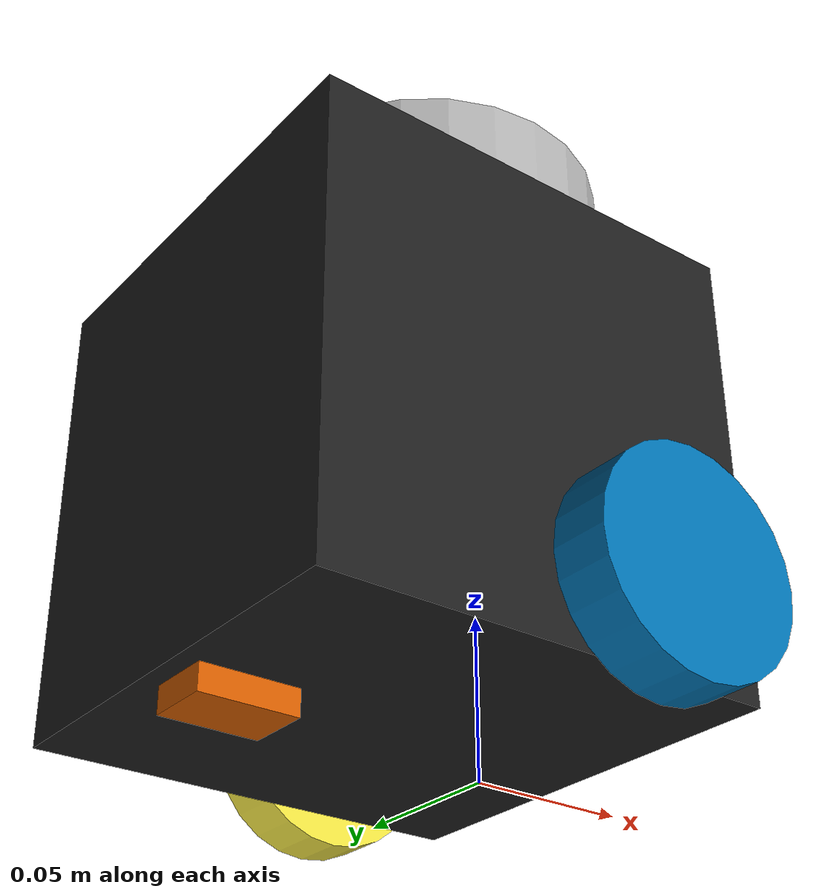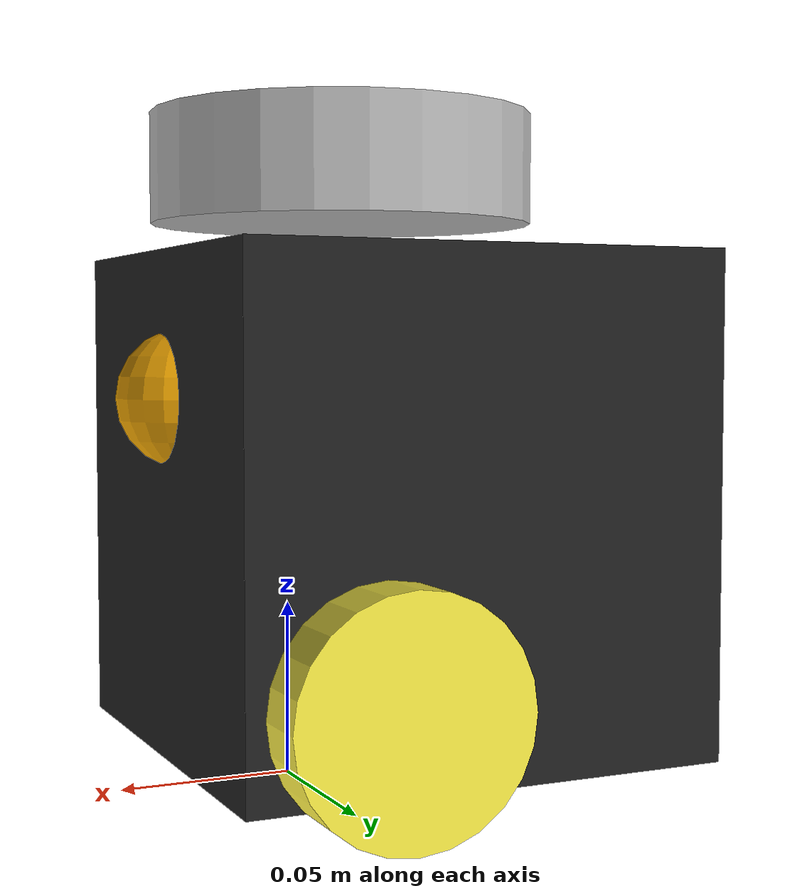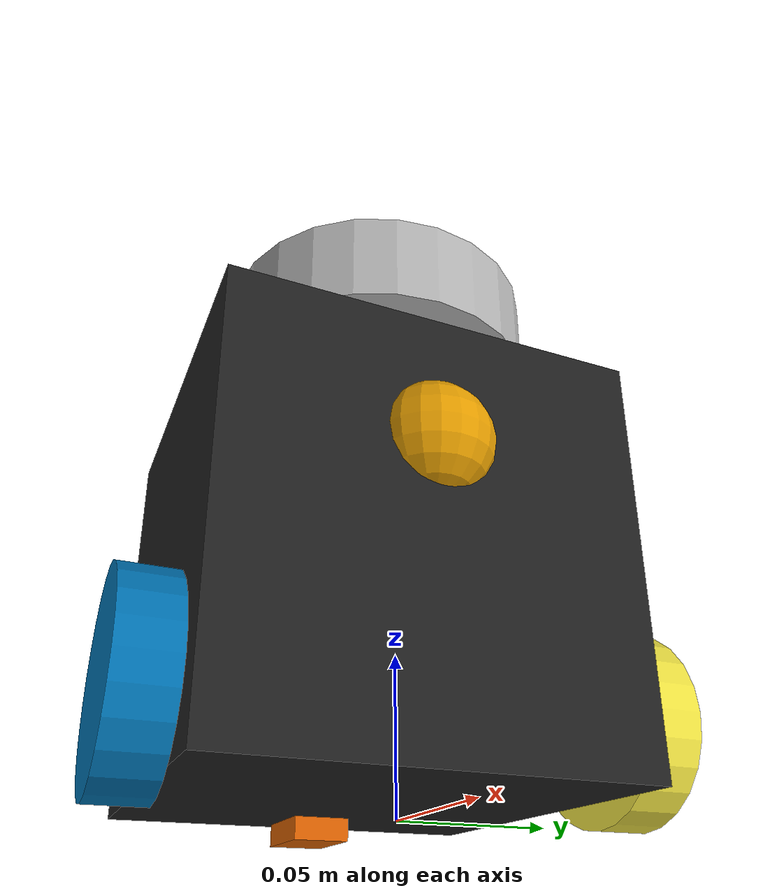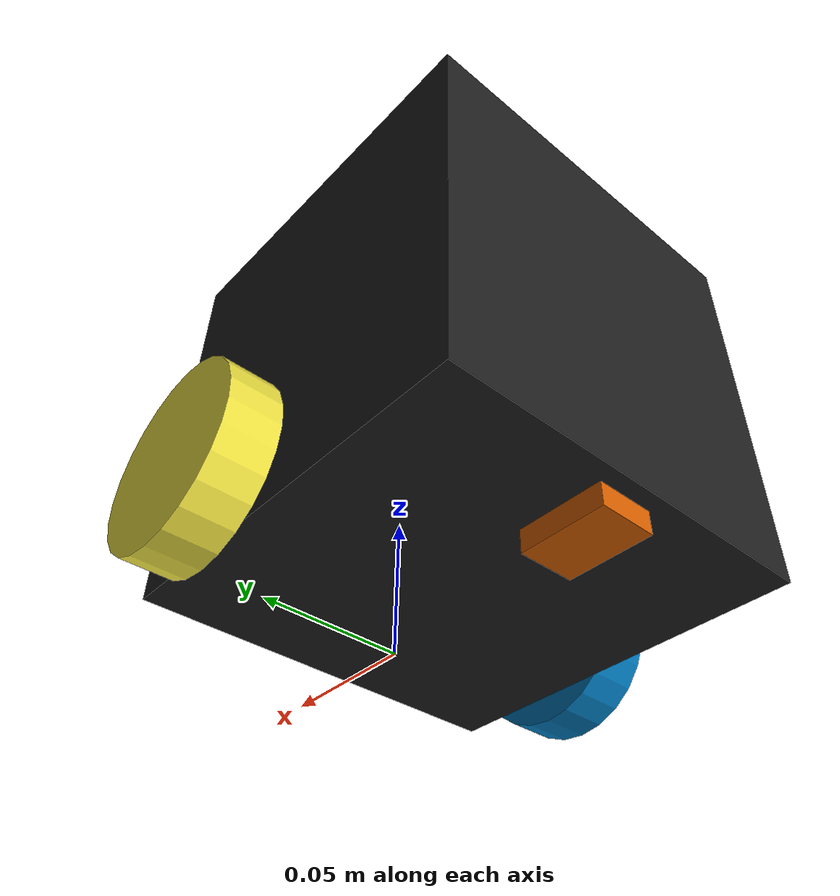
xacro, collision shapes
<?xml version="1.0" ?>
<robot name="turtlebot3_burger" xmlns:xacro="http://ros.org/wiki/xacro">
  <xacro:include filename="$(find turtlebot3_description)/urdf/common_properties.xacro"/>
  <xacro:include filename="$(find turtlebot3_description)/urdf/turtlebot3_burger.gazebo.xacro"/>
  <xacro:include filename="$(find comp_1)/urdf/camera.xacro" />

  <xacro:front_camera name = "camera" />

  <link name="base_footprint"/>

  <joint name="base_joint" type="fixed">
    <parent link="base_footprint"/>
    <child link="base_link"/>
    <origin xyz="0.0 0.0 0.010" rpy="0 0 0"/>
  </joint>

  <link name="base_link">
    <visual>
      <origin xyz="-0.032 0 0.0" rpy="0 0 0"/>
      <geometry>
        <mesh filename="package://turtlebot3_description/meshes/bases/burger_base.stl" scale="0.001 0.001 0.001"/>
      </geometry>
      <material name="light_black"/>
    </visual>

    <collision>
      <origin xyz="-0.032 0 0.070" rpy="0 0 0"/>
      <geometry>
        <box size="0.140 0.140 0.143"/>
      </geometry>
    </collision>

    <inertial>
      <origin xyz="0 0 0" rpy="0 0 0"/>
      <mass value="8.2573504e-01"/>
      <inertia ixx="2.2124416e-03" ixy="-1.2294101e-05" ixz="3.4938785e-05"
               iyy="2.1193702e-03" iyz="-5.0120904e-06"
               izz="2.0064271e-03" />
    </inertial>
  </link>

  <joint name="wheel_left_joint" type="continuous">
    <parent link="base_link"/>
    <child link="wheel_left_link"/>
    <origin xyz="0.0 0.08 0.023" rpy="-1.57 0 0"/>
    <axis xyz="0 0 1"/>
  </joint>

  <link name="wheel_left_link">
    <visual>
      <origin xyz="0 0 0" rpy="1.57 0 0"/>
      <geometry>
        <mesh filename="package://turtlebot3_description/meshes/wheels/left_tire.stl" scale="0.001 0.001 0.001"/>
      </geometry>
      <material name="dark"/>
    </visual>

    <collision>
      <origin xyz="0 0 0" rpy="0 0 0"/>
      <geometry>
        <cylinder length="0.018" radius="0.033"/>
      </geometry>
    </collision>

    <inertial>
      <origin xyz="0 0 0" />
      <mass value="2.8498940e-02" />
      <inertia ixx="1.1175580e-05" ixy="-4.2369783e-11" ixz="-5.9381719e-09"
               iyy="1.1192413e-05" iyz="-1.4400107e-11"
               izz="2.0712558e-05" />
      </inertial>
  </link>

  <joint name="wheel_right_joint" type="continuous">
    <parent link="base_link"/>
    <child link="wheel_right_link"/>
    <origin xyz="0.0 -0.080 0.023" rpy="-1.57 0 0"/>
    <axis xyz="0 0 1"/>
  </joint>

  <link name="wheel_right_link">
    <visual>
      <origin xyz="0 0 0" rpy="1.57 0 0"/>
      <geometry>
        <mesh filename="package://turtlebot3_description/meshes/wheels/right_tire.stl" scale="0.001 0.001 0.001"/>
      </geometry>
      <material name="dark"/>
    </visual>

    <collision>
      <origin xyz="0 0 0" rpy="0 0 0"/>
      <geometry>
        <cylinder length="0.018" radius="0.033"/>
      </geometry>
    </collision>

    <inertial>
      <origin xyz="0 0 0" />
      <mass value="2.8498940e-02" />
      <inertia ixx="1.1175580e-05" ixy="-4.2369783e-11" ixz="-5.9381719e-09"
               iyy="1.1192413e-05" iyz="-1.4400107e-11"
               izz="2.0712558e-05" />
      </inertial>
  </link>

  <joint name="caster_back_joint" type="fixed">
    <parent link="base_link"/>
    <child link="caster_back_link"/>
    <origin xyz="-0.081 0 -0.004" rpy="-1.57 0 0"/>
  </joint>

  <link name="caster_back_link">
    <collision>
      <origin xyz="0 0.001 0" rpy="0 0 0"/>
      <geometry>
        <box size="0.030 0.009 0.020"/>
      </geometry>
    </collision>

    <inertial>
      <origin xyz="0 0 0" />
      <mass value="0.005" />
      <inertia ixx="0.001" ixy="0.0" ixz="0.0"
               iyy="0.001" iyz="0.0"
               izz="0.001" />
    </inertial>
  </link>

  <!-- Laser Scan -->
  <joint name="imu_joint" type="fixed">
    <parent link="base_link"/>
    <child link="imu_link"/>
    <origin xyz="-0.032 0 0.068" rpy="0 0 0"/>
  </joint>

  <link name="imu_link"/>

  <joint name="scan_joint" type="fixed">
    <parent link="base_link"/>
    <child link="base_scan"/>
    <origin xyz="-0.032 0 0.172" rpy="0 0 0"/>
  </joint>

  <link name="base_scan">
    <visual>
      <origin xyz="0 0 0.0" rpy="0 0 0"/>
      <geometry>
        <mesh filename="package://turtlebot3_description/meshes/sensors/lds.stl" scale="0.001 0.001 0.001"/>
      </geometry>
      <material name="dark"/>
    </visual>

    <collision>
      <origin xyz="0.015 0 -0.0065" rpy="0 0 0"/>
      <geometry>
        <cylinder length="0.0315" radius="0.055"/>
      </geometry>
    </collision>

    <inertial>
      <mass value="0.114" />
      <origin xyz="0 0 0" />
      <inertia ixx="0.001" ixy="0.0" ixz="0.0"
               iyy="0.001" iyz="0.0"
               izz="0.001" />
    </inertial>
  </link>

  <!-- Camera -->
  <joint name="imu_camera_joint" type="fixed">
    <parent link="base_link"/>
    <child link="imu_camera_link"/>
    <origin xyz="0.03 0 0.1" rpy="0 0 0"/>
  </joint>

  <link name="imu_camera_link"/>

  <joint name="camera_joint" type="fixed">
    <parent link="base_link"/>
    <child link="camera_link"/>
    <origin xyz="0.03 0 0.1" rpy="0 0 0"/>
  </joint>

</robot>

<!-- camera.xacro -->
<robot xmlns:xacro="http://www.ros.org/wiki/xacro" name="turtlebot3_burgers">
  <xacro:macro name="front_camera" params="name">
    <!-- Camera -->
    <link name="camera_link">
      <visual>
        <geometry>
          <mesh filename="package://comp_1/meshes/head.dae" scale=".5 .5 .5"/>
        </geometry>
      </visual>
      <collision>
        <geometry>
          <sphere radius="0.02"/>
        </geometry>
      </collision>
      <inertial>
        <mass value="0.10"/>
        <inertia ixx="0.03" ixy="0.0" ixz="0.0" iyy="0.03" iyz="0.0" izz="0.03"/>
      </inertial>
    </link>

    <transmission name="camera_transmission">
      <type>transmission_interface/SimpleTransmission</type>
      <actuator name="$camera_motor">
        <mechanicalReduction>1</mechanicalReduction>
      </actuator>
      <joint name="base_to_camera">
        <hardwareInterface>hardware_interface/PositionJointInterface</hardwareInterface>
      </joint>
    </transmission>

    <gazebo reference="camera_link">
    <sensor type="camera" name="camera1">
      <update_rate>30.0</update_rate>
      <camera name="camera">
        <horizontal_fov>1.3962634</horizontal_fov>
        <image>
          <width>800</width>
          <height>800</height>
          <format>R8G8B8</format>
        </image>
        <clip>
          <near>0.02</near>
          <far>300</far>
        </clip>
        <noise>
          <type>gaussian</type>
          <!-- Noise is sampled independently per pixel on each frame.
               That pixel's noise value is added to each of its color
               channels, which at that point lie in the range [0,1]. -->
          <mean>0.0</mean>
          <stddev>0.007</stddev>
        </noise>
      </camera>
      <plugin name="camera_controller" filename="libgazebo_ros_camera.so">
        <alwaysOn>true</alwaysOn>
        <updateRate>0.0</updateRate>
        <cameraName>camera</cameraName>
        <imageTopicName>image_raw</imageTopicName>
        <cameraInfoTopicName>camera_info</cameraInfoTopicName>
        <frameName>camera_link</frameName>
        <hackBaseline>0.07</hackBaseline>
        <distortionK1>0.0</distortionK1>
        <distortionK2>0.0</distortionK2>
        <distortionK3>0.0</distortionK3>
        <distortionT1>0.0</distortionT1>
        <distortionT2>0.0</distortionT2>
      </plugin>
    </sensor>
  </gazebo>
  </xacro:macro>
</robot>
